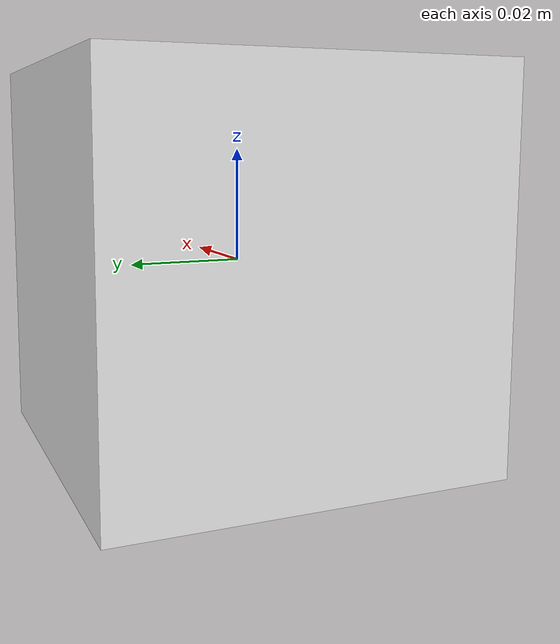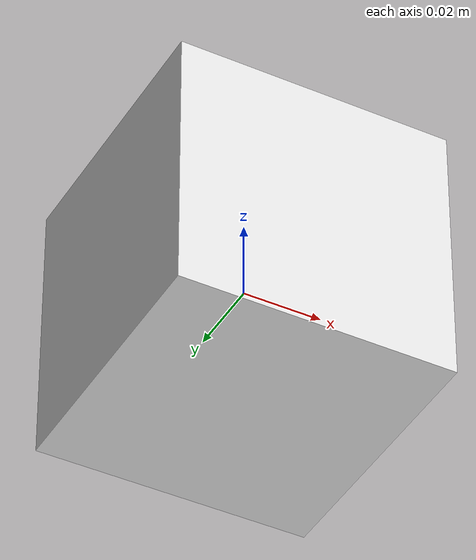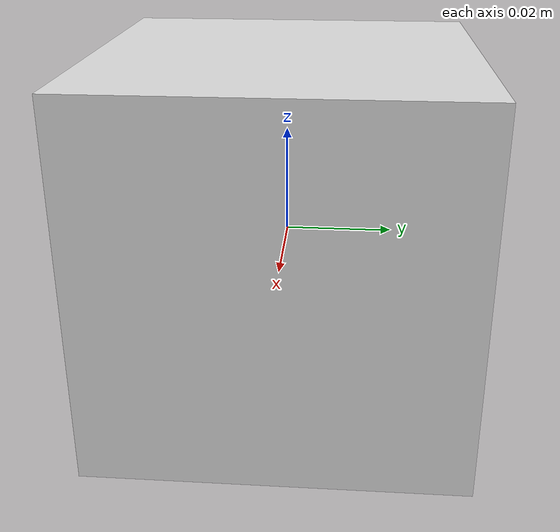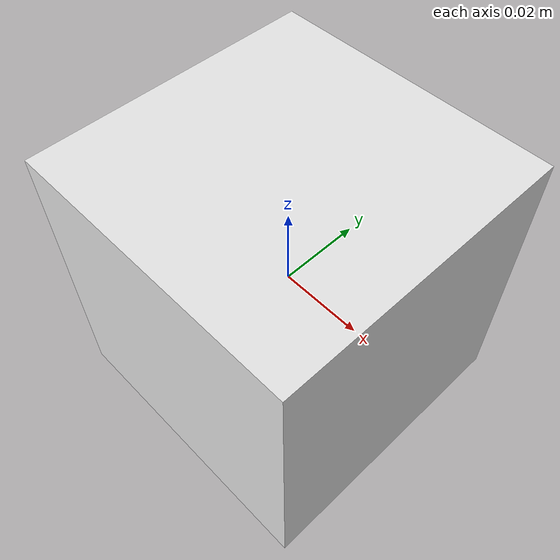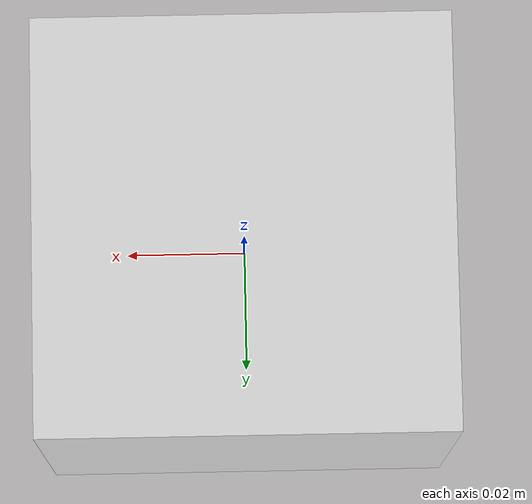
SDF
<?xml version="1.0"?>
<sdf version="1.7">

  <!-- world->ghost_body_y->ghost_body_z_sphere-->
  <model name="simple_cuboid0.07m">
    <!-- The model for a solid box of uniform density. -->
    <link name="box">
      <inertial>
        <mass>5.0</mass>
        <inertia>
          <ixx>4.1e-4</ixx>
          <ixy>0</ixy>
          <ixz>0</ixz>
          <iyy>4.1e-4</iyy>
          <iyz>0</iyz>
          <izz>4.1e-4</izz>
        </inertia>
      </inertial>

      <visual name="box_visual">
        <geometry>
          <box>
            <size>0.069 0.069 0.069</size>
          </box>
        </geometry>
        <material>
          <diffuse>0.9 0.9 0.9 0.9</diffuse>
        </material>
      </visual>

      <collision name="collision">
        <geometry>
          <box>
            <size>0.069 0.069 0.069</size>
          </box>
        </geometry>
        <surface>
          <friction>
            <ode>
              <mu>1.0</mu>
              <mu2>1.0</mu2>
            </ode>
          </friction>
        </surface>
      </collision>

      <collision name="minus_x_lower_left_corner">
        <pose> -0.035 -0.035 -0.035 0 0 0</pose>
        <geometry>
          <sphere>
            <radius>1e-7</radius>
          </sphere>
        </geometry>
      </collision>

      <collision name="minus_x_lower_right_corner">
        <pose> -0.035 0.035 -0.035 0 0 0 </pose>
        <geometry>
          <sphere>
            <radius>1e-7</radius>
          </sphere>
        </geometry>
      </collision>

      <collision name="plus_x_lower_left_corner">
        <pose> 0.035 -0.035 -0.035 0 0 0</pose>
        <geometry>
          <sphere>
            <radius>1e-7</radius>
          </sphere>
        </geometry>
      </collision>

      <collision name="plus_x_lower_right_corner">
        <pose> 0.035 0.035 -0.035 0 0 0 </pose>
        <geometry>
          <sphere>
            <radius>1e-7</radius>
          </sphere>
        </geometry>
      </collision>

      <collision name="minus_x_upper_left_corner">
        <pose> -0.035 -0.035 0.035 0 0 0</pose>
        <geometry>
          <sphere>
            <radius>1e-7</radius>
          </sphere>
        </geometry>
      </collision>

      <collision name="minus_x_upper_right_corner">
        <pose> -0.035 0.035 0.035 0 0 0 </pose>
        <geometry>
          <sphere>
            <radius>1e-7</radius>
          </sphere>
        </geometry>
      </collision>

      <collision name="plus_x_upper_left_corner">
        <pose> 0.035 -0.035 0.035 0 0 0</pose>
        <geometry>
          <sphere>
            <radius>1e-7</radius>
          </sphere>
        </geometry>
      </collision>

      <collision name="plus_x_upper_right_corner">
        <pose> 0.035 0.035 0.035 0 0 0 </pose>
        <geometry>
          <sphere>
            <radius>1e-7</radius>
          </sphere>
        </geometry>
      </collision>

    </link>
  </model>
</sdf>
